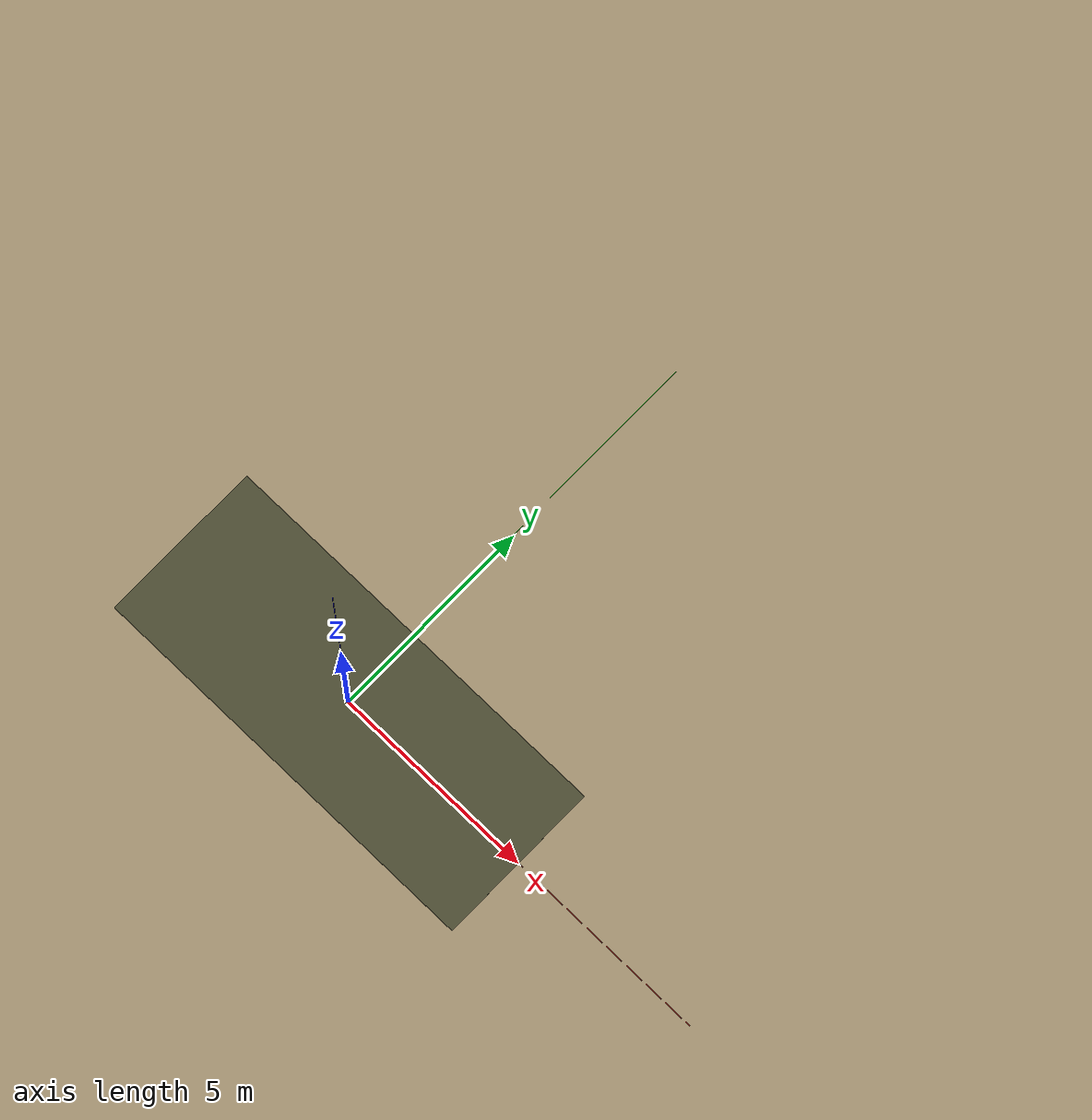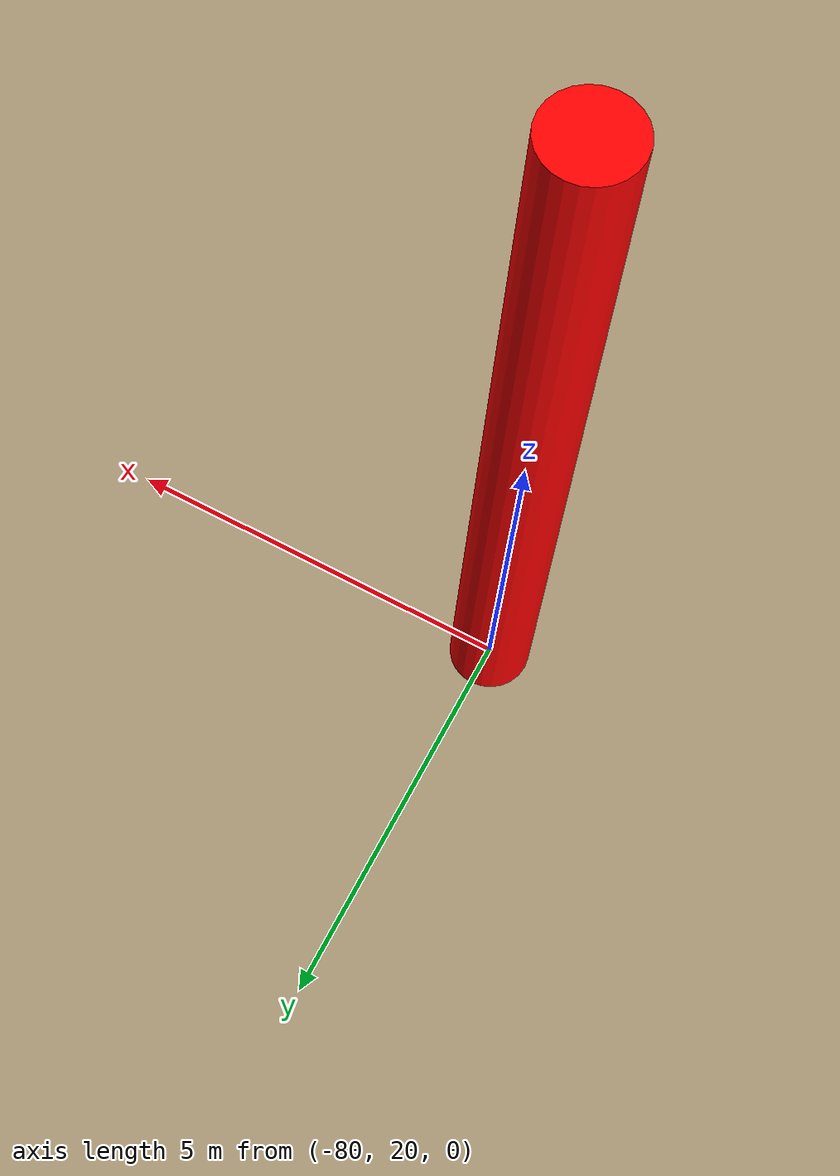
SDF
<sdf version="1.9">
 <world name="pole">
  <physics name="1ms" type="ignore">
   <max_step_size>0.001</max_step_size>
   <real_time_factor>1.0</real_time_factor>
  </physics>
  <plugin filename="gz-sim-physics-system" name="gz::sim::systems::Physics"/>
  <plugin filename="gz-sim-sensors-system" name="gz::sim::systems::Sensors">
   <render_engine>ogre2</render_engine>
  </plugin>
  <plugin filename="gz-sim-user-commands-system" name="gz::sim::systems::UserCommands"/>
  <plugin filename="gz-sim-scene-broadcaster-system" name="gz::sim::systems::SceneBroadcaster"/>
  <plugin filename="gz-sim-imu-system" name="gz::sim::systems::Imu"/>
  <plugin filename="gz-sim-navsat-system" name="gz::sim::systems::NavSat"/>
  <plugin filename="gz-sim-wind-effects-system" name="gz::sim::systems::WindEffects">
   <horizontal>
    <magnitude>
     <time_for_rise>5</time_for_rise>
     <sin><amplitude_percent>0.35</amplitude_percent><period>10</period></sin>
     <noise type="gaussian"><stddev>0.6</stddev></noise>
    </magnitude>
    <direction>
     <time_for_rise>15</time_for_rise>
     <sin><amplitude>0.15</amplitude><period>25</period></sin>
     <noise type="gaussian"><stddev>0.05</stddev></noise>
    </direction>
   </horizontal>
   <vertical><time_for_rise>3</time_for_rise><noise type="gaussian"><stddev>0.4</stddev></noise></vertical>
   <force_approximation_scaling_factor>
    <when zlt="5">1.6</when>
    <when zge="5">1.0</when>
   </force_approximation_scaling_factor>
  </plugin>
  <scene>
   <ambient>0.9 0.9 0.9</ambient>
   <background>0.7 0.8 0.9</background>
   <sky><time>13</time><clouds><humidity>0.15</humidity><mean_size>0.2</mean_size></clouds></sky>
   <shadow>1</shadow>
  </scene>
  <spherical_coordinates>
   <latitude_deg>37.158333</latitude_deg>
   <longitude_deg>38.791668</longitude_deg>
   <elevation>477</elevation>
   <heading_deg>0</heading_deg>
   <surface_model>EARTH_WGS84</surface_model>
  </spherical_coordinates>
  <light type="directional" name="sun">
   <pose>0 0 50 0 0 0</pose>
   <diffuse>0.95 0.95 0.9 1</diffuse>
   <specular>0.8 0.8 0.8 1</specular>
   <attenuation>
    <range>1000</range>
    <constant>0.9</constant>
    <linear>0.01</linear>
    <quadratic>0.001</quadratic>
   </attenuation>
   <direction>-0.3 0.3 -0.9</direction>
  </light>
  <model name="axes">
   <static>1</static>
   <link name="link">
    <visual name="r">
     <cast_shadows>0</cast_shadows>
     <pose>5 0 0.1 0 0 0</pose>
     <geometry><box><size>10 0.01 0.01</size></box></geometry>
     <material>
      <ambient>1 0 0 0.8</ambient>
      <diffuse>1 0 0 0.8</diffuse>
      <emissive>1 0 0 0.8</emissive>
      <specular>0.5 0.5 0.5 0.8</specular>
     </material>
    </visual>
    <visual name="g">
     <cast_shadows>0</cast_shadows>
     <pose>0 5 0.1 0 0 0</pose>
     <geometry><box><size>0.01 10 0.01</size></box></geometry>
     <material>
      <ambient>0 1 0 0.8</ambient>
      <diffuse>0 1 0 0.8</diffuse>
      <emissive>0 1 0 0.8</emissive>
      <specular>0.5 0.5 0.5 0.8</specular>
     </material>
    </visual>
    <visual name="b">
     <cast_shadows>0</cast_shadows>
     <pose>0 0 5.1 0 0 0</pose>
     <geometry><box><size>0.01 0.01 10</size></box></geometry>
     <material>
      <ambient>0 0 1 0.8</ambient>
      <diffuse>0 0 1 0.8</diffuse>
      <emissive>0 0 1 0.8</emissive>
      <specular>0.5 0.5 0.5 0.8</specular>
     </material>
    </visual>
    <sensor name="navsat_sensor" type="navsat"><always_on>1</always_on><update_rate>1</update_rate></sensor>
   </link>
  </model>
  <model name="ground_plane">
   <static>true</static>
   <link name="link">
    <collision name="collision">
     <geometry><plane><normal>0 0 1</normal><size>1000 1000</size></plane></geometry>
    </collision>
    <visual name="visual">
     <geometry><plane><normal>0 0 1</normal><size>1000 1000</size></plane></geometry>
     <material>
      <ambient>0.65 0.58 0.45 1</ambient>
      <diffuse>0.65 0.58 0.45 1</diffuse>
      <specular>0.1 0.1 0.1 1</specular>
     </material>
    </visual>
   </link>
  </model>
  <model name="pole_1">
   <static>true</static>
   <link name="link">
    <collision name="collision">
     <geometry><cylinder><radius>0.5</radius><length>20.0</length></cylinder></geometry>
     <pose>-80 20 1 0 0 0</pose>
    </collision>
    <visual name="visual">
     <pose>-80 20 1 0 0 0</pose>
     <geometry><cylinder><radius>0.5</radius><length>20.0</length></cylinder></geometry>
     <material><ambient>1 0 0 1</ambient><diffuse>1 0 0 1</diffuse><specular>1 0 0 1</specular></material>
    </visual>
   </link>
  </model>
  <model name="pole_2">
   <static>true</static>
   <link name="link">
    <collision name="collision">
     <pose>-230 20 1 0 0 0</pose>
     <geometry><cylinder><radius>0.5</radius><length>20.0</length></cylinder></geometry>
    </collision>
    <visual name="visual">
     <pose>-230 20 1 0 0 0</pose>
     <geometry><cylinder><radius>0.5</radius><length>20.0</length></cylinder></geometry>
     <material><ambient>1 0 0 1</ambient><diffuse>1 0 0 1</diffuse><specular>1 0 0 1</specular></material>
    </visual>
   </link>
  </model>
  <model name="ashpalt">
   <static>true</static>
   <link name="link">
    <collision name="collision">
     <pose>0 0 0.01 0 0 0</pose>
     <geometry><plane><normal>0 0 1</normal><size>10 4</size></plane></geometry>
    </collision>
    <visual name="visual">
     <pose>0 0 0.01 0 0 0</pose>
     <geometry><plane><normal>0 0 1</normal><size>10 4</size></plane></geometry>
     <material>
      <ambient>0.3 0.3 0.2 1</ambient>
      <diffuse>0.3 0.3 0.2 1</diffuse>
      <specular>0.05 0.05 0.05 1</specular>
     </material>
    </visual>
   </link>
  </model>
 </world>
</sdf>
